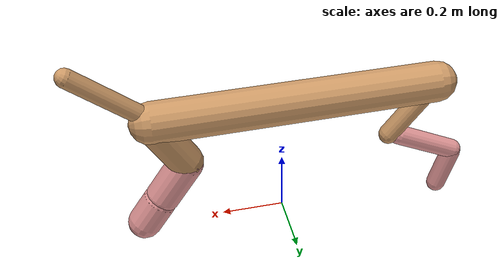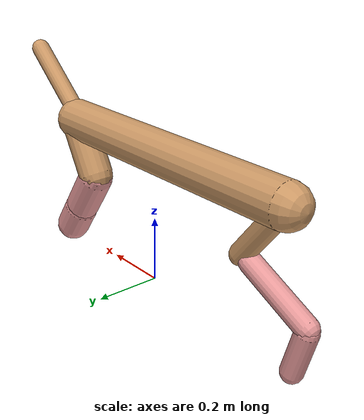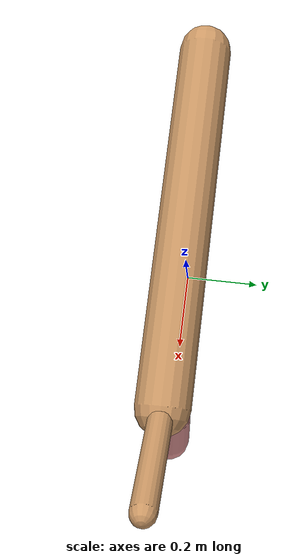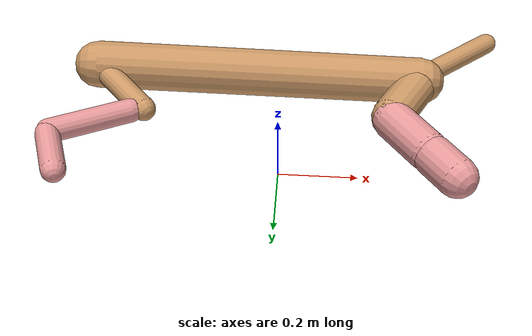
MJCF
<mujoco model="cheetah">
  <compiler angle="radian" coordinate="local" inertiafromgeom="true" settotalmass="14" />
  <default>
    <joint armature=".1" damping=".01" limited="true" solimplimit="0 .8 .03" solreflimit=".02 1" stiffness="8" />
    <geom conaffinity="0" condim="3" contype="1" friction="0.8 .1 .1" rgba="0.8 0.6 .4 1" solimp="0.0 0.8 0.01" solref="0.02 1" />
    <motor ctrllimited="true" ctrlrange="-1 1" />
  </default>
  <size nstack="300000" nuser_geom="1" />
  <option gravity="0 0 -9.81" timestep="0.01" />
  <worldbody>
    <body name="torso" pos="0.0 0.0 0.41319999999999996">
      <joint armature="0" axis="1 0 0" damping="0" limited="false" name="ignorex" pos="0 0 0" stiffness="0" type="slide" />
      <joint armature="0" axis="0 0 1" damping="0" limited="false" name="ignorez" pos="0 0 0" stiffness="0" type="slide" />
      <joint armature="0" axis="0 1 0" damping="0" limited="false" name="ignorey" pos="0 0 0" stiffness="0" type="hinge" />
      <geom fromto="-0.5 0.0 0.0 0.4024387942762423 0.0 0.0" name="torso" size="0.06493334712766047" type="capsule" />
      <geom axisangle="0 1 0 .87" name="head" pos="0.5024387942762423 0.0 0.1" size="0.028943130766866155 0.15" type="capsule" />

      <body name="bthigh" pos="-.5 0 0">
        <joint axis="0 1 0" damping="6" name="bthigh" pos="0 0 0" range="-.52 1.05" stiffness="240" type="hinge" />
        <geom axisangle="0 1 0 -3.8" name="bthigh" pos="0.07690192518685594 0.0 -0.09997250274291272" size="0.0322 0.10711634057277486" type="capsule" />
        <body name="bshin" pos="0.11380385037371188 0.0 -0.18994500548582544">
          <joint axis="0 1 0" damping="4.5" name="bshin" pos="0 0 0" range="-.785 .785" stiffness="180" type="hinge" />
          <geom axisangle="0 1 0 -2.03" name="bshin" pos="-0.10494740508314782 0.0 -0.05247370254157391" rgba="0.9 0.6 0.6 1" size="0.0322 0.11081000748907745" type="capsule" />
          <body name="bfoot" pos="-0.20989481016629563 0.0 -0.10494740508314782">
            <joint axis="0 1 0" damping="3" name="bfoot" pos="0 0 0" range="-.4 .785" stiffness="120" type="hinge" />
            <geom axisangle="0 1 0 -.27" name="bfoot" pos="0.022743540763460676 0.0 -0.07353744846852286" rgba="0.9 0.6 0.6 1" size="0.0322 0.06944093802648853" type="capsule" />
            <inertial mass="10" />
          </body>
        </body>
      </body>
      <body name="fthigh" pos="0.4024387942762423 0.0 0.0">
        <joint axis="0 1 0" damping="4.5" name="fthigh" pos="0 0 0" range="-1.5 0.8" stiffness="180" type="hinge" />
        <geom axisangle="0 1 0 .52" name="fthigh" pos="-0.04989554608158897 0.0 -0.0855352218541525" size="0.055053886457376515 0.0931" type="capsule" />
        <body name="fshin" pos="-0.09979109216317794 0.0 -0.171070443708305">
          <joint axis="0 1 0" damping="3" name="fshin" pos="0 0 0" range="-1.2 1.1" stiffness="120" type="hinge" />
          <geom axisangle="0 1 0 -.6" name="fshin" pos="0.046381400387749405 0.0 -0.06422040053688378" rgba="0.9 0.6 0.6 1" size="0.055053886457376515 0.07419999999999999" type="capsule" />
          <body name="ffoot" pos="0.09276280077549881 0.0 -0.12844080107376757">
            <joint axis="0 1 0" damping="1.5" name="ffoot" pos="0 0 0" range="-3.1 -0.3" stiffness="60" type="hinge" />
            <geom axisangle="0 1 0 -.6" name="ffoot" pos="0.033644090582416526 0.0 -0.05233525201709238" rgba="0.9 0.6 0.6 1" size="0.055053886457376515 0.049" type="capsule" />
            <inertial mass="10" />
          </body>
        </body>
      </body>
    </body>
  </worldbody>
  <actuator>
    <motor gear="120" joint="bthigh" name="bthigh" />
    <motor gear="90" joint="bshin" name="bshin" />
    <motor gear="60" joint="bfoot" name="bfoot" />
    <motor gear="120" joint="fthigh" name="fthigh" />
    <motor gear="60" joint="fshin" name="fshin" />
    <motor gear="30" joint="ffoot" name="ffoot" />
  </actuator>
</mujoco>
